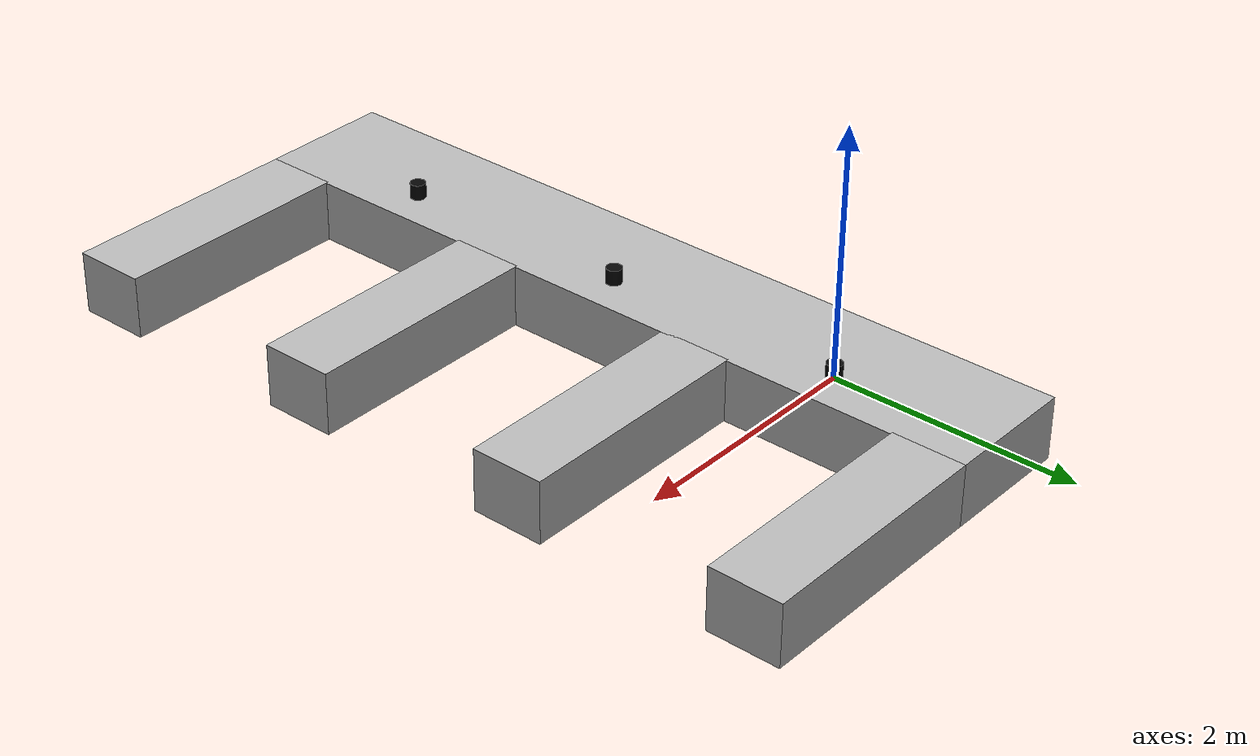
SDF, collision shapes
<?xml version="1.0" encoding="UTF-8"?>
<sdf version='1.9'>
  <model name='bounded_dock'>
    <static>true</static>
    <pose>0 0 0 0 0 0</pose>

    <link name='docking_link'>
      <inertial>
        <pose>0 0 0 0 0 0</pose>
        <mass>5500.7075582190346</mass>
        <inertia>
          <ixx>240.61530446574389</ixx>
          <ixy>0.093579675196458503</ixy>
          <ixz>7.4520018571842047e-05</ixz>
          <iyy>227.7390639361879</iyy>
          <iyz>0.00144094006270884</iyz>
          <izz>232.86831224580979</izz>
        </inertia>
      </inertial>

      <collision name='dock_back_beam'>
        <pose>-0.244 -2.032 -0.255 0 0 0</pose>
        <geometry><box><size>1.133 6.700 0.514</size></box></geometry>
      </collision>
      <collision name='dock_finger_1'>
        <pose>1.317 1.016 -0.255 0 0 0</pose>
        <geometry><box><size>2.034 0.604 0.514</size></box></geometry>
      </collision>
      <collision name='dock_finger_2'>
        <pose>1.317 -1.016 -0.255 0 0 0</pose>
        <geometry><box><size>2.034 0.604 0.514</size></box></geometry>
      </collision>
      <collision name='dock_finger_3'>
        <pose>1.317 -3.048 -0.255 0 0 0</pose>
        <geometry><box><size>2.034 0.604 0.514</size></box></geometry>
      </collision>
      <collision name='dock_finger_4'>
        <pose>1.317 -5.080 -0.255 0 0 0</pose>
        <geometry><box><size>2.034 0.604 0.514</size></box></geometry>
      </collision>

      <visual name='docking_link_visual'>
        <pose>0 0 0 1.5708 0 0</pose>
        <geometry>
          <mesh>
            <scale>1 1 1</scale>
            <uri>model://robotx26/docking_task/docking_station_bounded/docking_station_bounded.glb</uri>
          </mesh>
        </geometry>
      </visual>
    </link>

    <include>
      <name>docking_led_left</name>
      <uri>model://robotx26/docking_led</uri>
      <pose> 0 -4.068 0.06453 0 0 0</pose>
    </include>

    <include>
      <name>docking_led_middle</name>
      <uri>model://robotx26/docking_led</uri>
      <pose>0 -2.038 0.06453 0 0 0</pose>
    </include>

    <include>
      <name>docking_led_right</name>
      <uri>model://robotx26/docking_led</uri>
      <pose>0 0 0.06453 0 0 0</pose>
    </include>

  </model>
</sdf>

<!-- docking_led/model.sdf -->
<sdf version='1.9'>
  <model name='docking_led'>
    <static>true</static>
    <link name='dock_led'>
      <pose>0 0 0 0 0 0</pose>
      <collision name='dock_led_collision'>
        <geometry>
          <cylinder>
            <radius>0.064</radius>
            <length>0.12906</length>
          </cylinder>
        </geometry>
      </collision>

      <visual name='dock_led_visual'>
        <geometry>
          <cylinder>
            <radius>0.064</radius>
            <length>0.12906</length>
          </cylinder>
        </geometry>
        <material>
          <ambient>0.02 0.02 0.02 1</ambient>
          <diffuse>0.02 0.02 0.02 1</diffuse>
          <specular>0 0 0 1</specular>
          <emissive>0 0 0 1</emissive>
        </material>
      </visual>
    </link>

    <plugin filename="libgz_led_plugin.so" name="gz::sim::systems::LedPlugin">
      <startup_mode>off</startup_mode>

      <led name="led">
        <visual_name>dock_led::dock_led_visual</visual_name>
        <default_state>
          <color>0 0 0 1</color>
          <intensity>0.0</intensity>
        </default_state>
      </led>

      <mode name='off'>
        <step always_on='true'><color>0 0 0 1</color></step>
      </mode>

      <mode name='steady_red'>
        <step always_on='true'><color>1 0 0 1</color></step>
      </mode>

      <mode name='steady_green'>
        <step always_on='true'><color>0 1 0 1</color></step>
      </mode>
    </plugin>
  </model>
</sdf>
